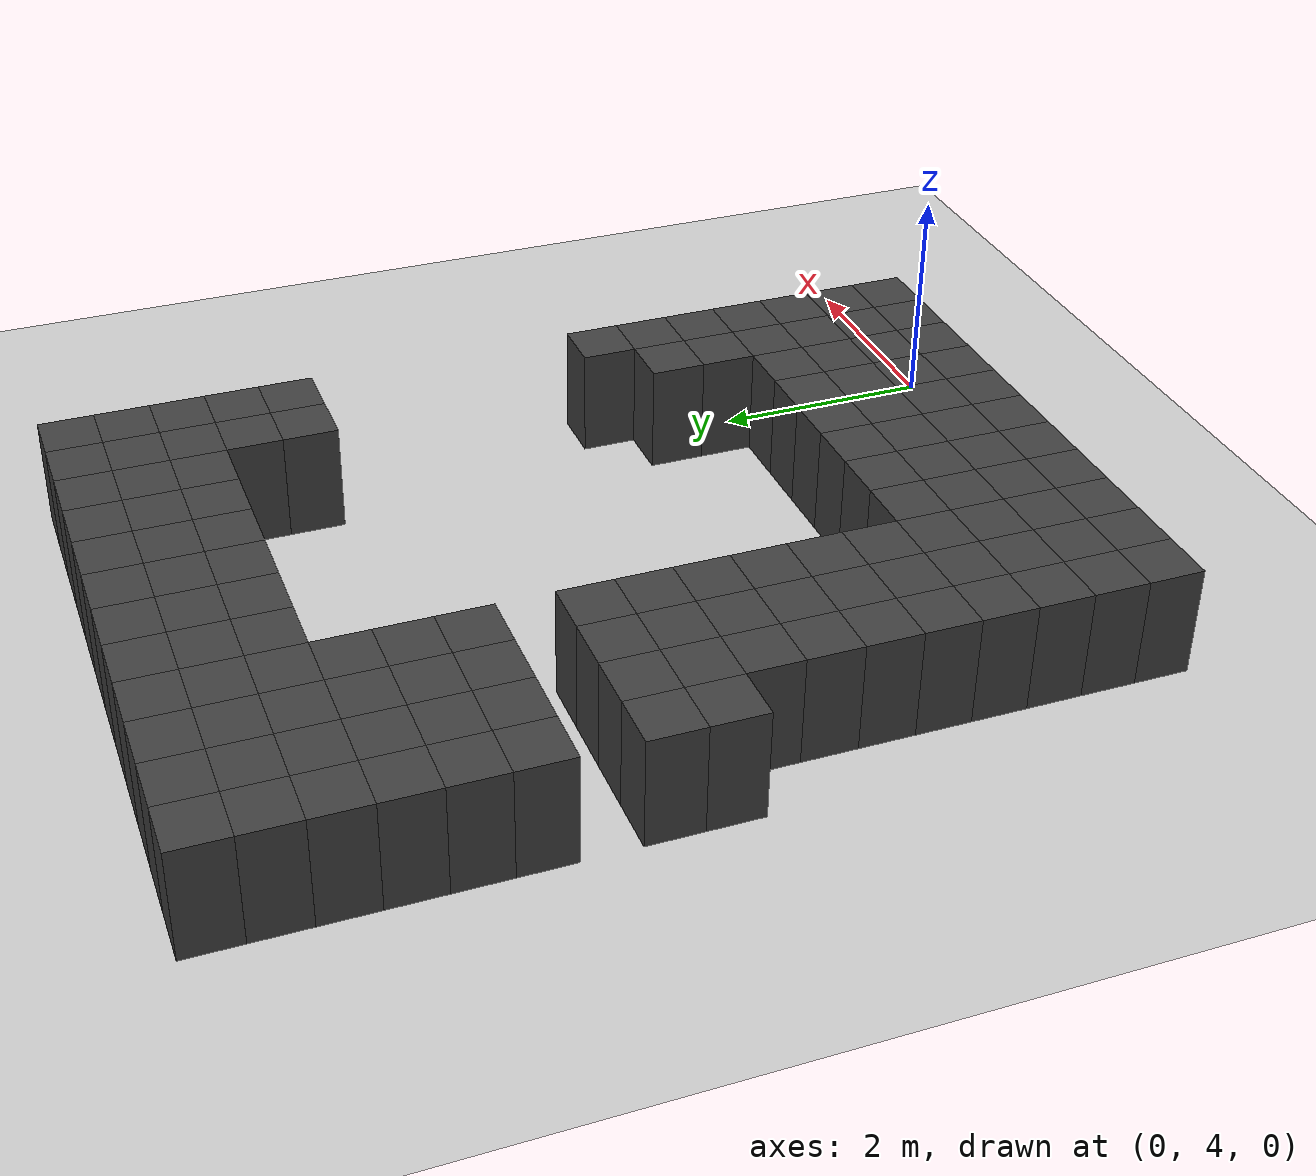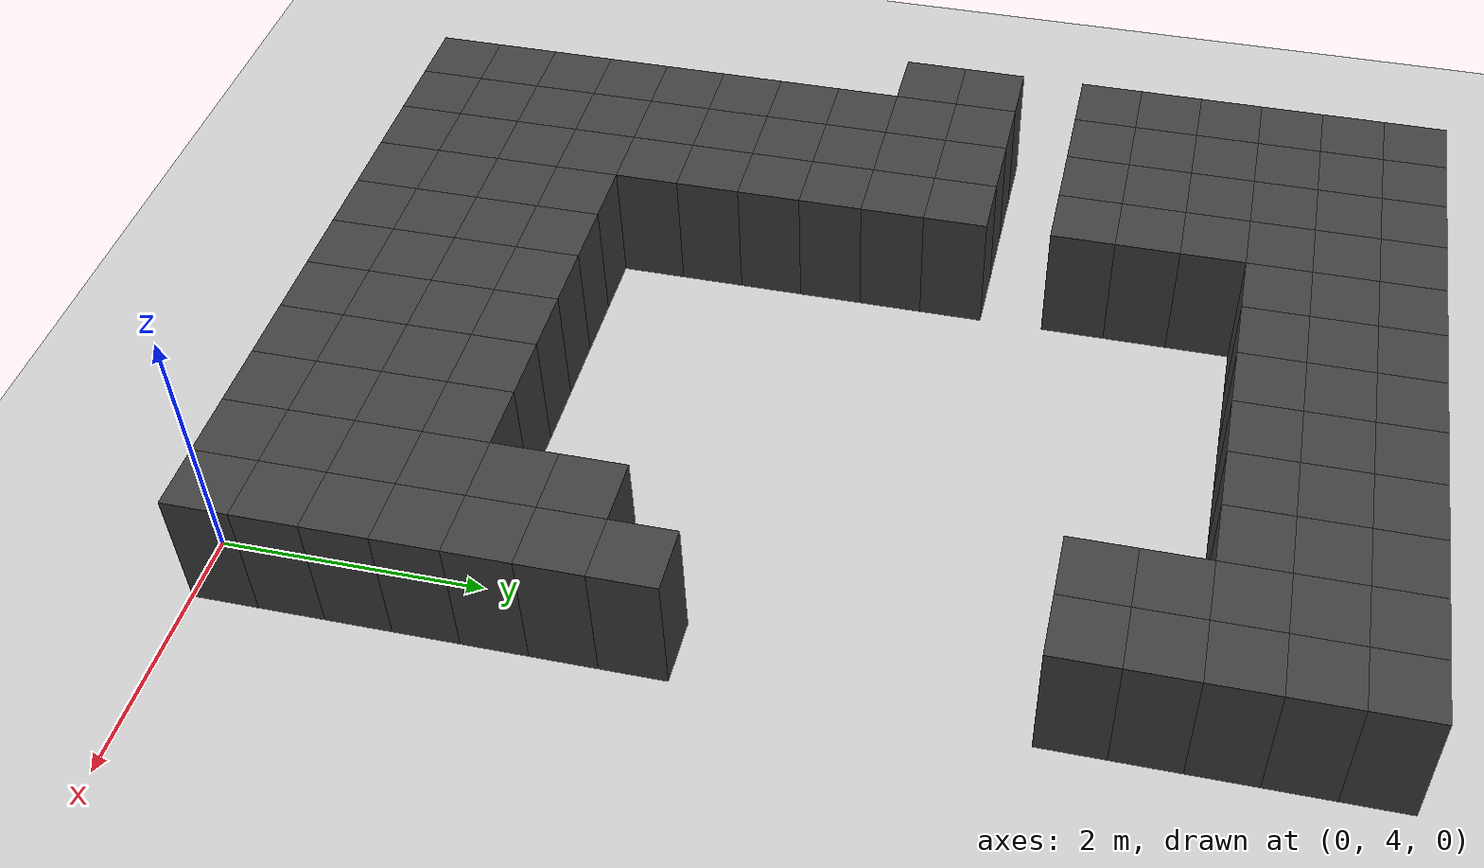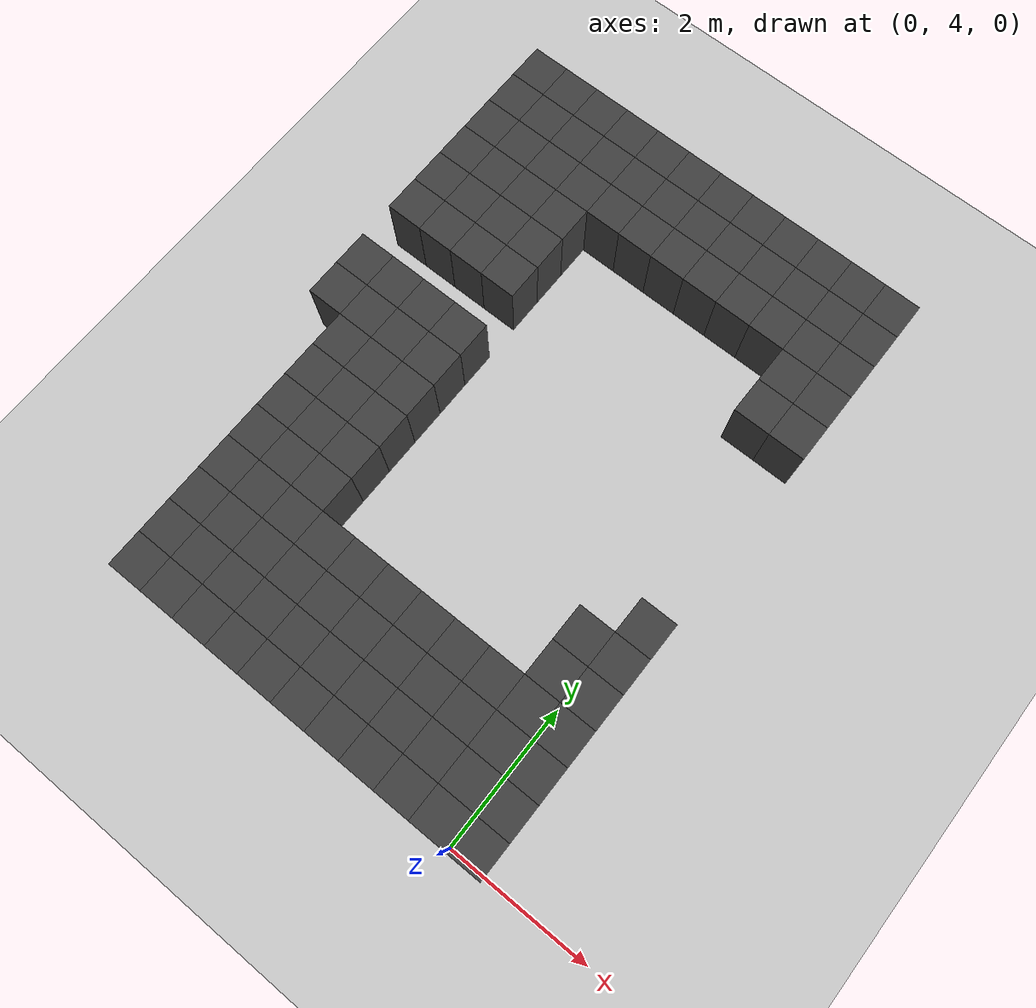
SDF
<sdf version="1.7">
 <world name="map_14510">
  <model name="ground_plane">
   <static>true</static>
   <link name="link">
    <collision name="collision">
     <geometry><plane><normal>0 0 1</normal><size>200 200</size></plane></geometry>
    </collision>
    <visual name="visual">
     <geometry><plane><normal>0 0 1</normal><size>200 200</size></plane></geometry>
     <material><ambient>0.8 0.8 0.8 1</ambient><diffuse>0.8 0.8 0.8 1</diffuse></material>
    </visual>
   </link>
  </model>
  <model name="maze_environment">
   <static>true</static>
   <link name="wall_14">
    <pose>-5.250 12.250 0.500 0 0 0</pose>
    <collision name="col"><geometry><box><size>0.5 0.5 1.0</size></box></geometry></collision>
    <visual name="vis">
     <geometry><box><size>0.5 0.5 1.0</size></box></geometry>
     <material><ambient>0.15 0.15 0.15 1</ambient><diffuse>0.25 0.25 0.25 1</diffuse></material>
    </visual>
   </link>
   <link name="wall_15">
    <pose>-4.750 12.250 0.500 0 0 0</pose>
    <collision name="col"><geometry><box><size>0.5 0.5 1.0</size></box></geometry></collision>
    <visual name="vis">
     <geometry><box><size>0.5 0.5 1.0</size></box></geometry>
     <material><ambient>0.15 0.15 0.15 1</ambient><diffuse>0.25 0.25 0.25 1</diffuse></material>
    </visual>
   </link>
   <link name="wall_16">
    <pose>-4.250 12.250 0.500 0 0 0</pose>
    <collision name="col"><geometry><box><size>0.5 0.5 1.0</size></box></geometry></collision>
    <visual name="vis">
     <geometry><box><size>0.5 0.5 1.0</size></box></geometry>
     <material><ambient>0.15 0.15 0.15 1</ambient><diffuse>0.25 0.25 0.25 1</diffuse></material>
    </visual>
   </link>
   <link name="wall_17">
    <pose>-3.750 12.250 0.500 0 0 0</pose>
    <collision name="col"><geometry><box><size>0.5 0.5 1.0</size></box></geometry></collision>
    <visual name="vis">
     <geometry><box><size>0.5 0.5 1.0</size></box></geometry>
     <material><ambient>0.15 0.15 0.15 1</ambient><diffuse>0.25 0.25 0.25 1</diffuse></material>
    </visual>
   </link>
   <link name="wall_18">
    <pose>-3.250 12.250 0.500 0 0 0</pose>
    <collision name="col"><geometry><box><size>0.5 0.5 1.0</size></box></geometry></collision>
    <visual name="vis">
     <geometry><box><size>0.5 0.5 1.0</size></box></geometry>
     <material><ambient>0.15 0.15 0.15 1</ambient><diffuse>0.25 0.25 0.25 1</diffuse></material>
    </visual>
   </link>
   <link name="wall_19">
    <pose>-2.750 12.250 0.500 0 0 0</pose>
    <collision name="col"><geometry><box><size>0.5 0.5 1.0</size></box></geometry></collision>
    <visual name="vis">
     <geometry><box><size>0.5 0.5 1.0</size></box></geometry>
     <material><ambient>0.15 0.15 0.15 1</ambient><diffuse>0.25 0.25 0.25 1</diffuse></material>
    </visual>
   </link>
   <link name="wall_20">
    <pose>-2.250 12.250 0.500 0 0 0</pose>
    <collision name="col"><geometry><box><size>0.5 0.5 1.0</size></box></geometry></collision>
    <visual name="vis">
     <geometry><box><size>0.5 0.5 1.0</size></box></geometry>
     <material><ambient>0.15 0.15 0.15 1</ambient><diffuse>0.25 0.25 0.25 1</diffuse></material>
    </visual>
   </link>
   <link name="wall_21">
    <pose>-1.750 12.250 0.500 0 0 0</pose>
    <collision name="col"><geometry><box><size>0.5 0.5 1.0</size></box></geometry></collision>
    <visual name="vis">
     <geometry><box><size>0.5 0.5 1.0</size></box></geometry>
     <material><ambient>0.15 0.15 0.15 1</ambient><diffuse>0.25 0.25 0.25 1</diffuse></material>
    </visual>
   </link>
   <link name="wall_22">
    <pose>-1.250 12.250 0.500 0 0 0</pose>
    <collision name="col"><geometry><box><size>0.5 0.5 1.0</size></box></geometry></collision>
    <visual name="vis">
     <geometry><box><size>0.5 0.5 1.0</size></box></geometry>
     <material><ambient>0.15 0.15 0.15 1</ambient><diffuse>0.25 0.25 0.25 1</diffuse></material>
    </visual>
   </link>
   <link name="wall_23">
    <pose>-0.750 12.250 0.500 0 0 0</pose>
    <collision name="col"><geometry><box><size>0.5 0.5 1.0</size></box></geometry></collision>
    <visual name="vis">
     <geometry><box><size>0.5 0.5 1.0</size></box></geometry>
     <material><ambient>0.15 0.15 0.15 1</ambient><diffuse>0.25 0.25 0.25 1</diffuse></material>
    </visual>
   </link>
   <link name="wall_24">
    <pose>-0.250 12.250 0.500 0 0 0</pose>
    <collision name="col"><geometry><box><size>0.5 0.5 1.0</size></box></geometry></collision>
    <visual name="vis">
     <geometry><box><size>0.5 0.5 1.0</size></box></geometry>
     <material><ambient>0.15 0.15 0.15 1</ambient><diffuse>0.25 0.25 0.25 1</diffuse></material>
    </visual>
   </link>
   <link name="wall_25">
    <pose>0.250 12.250 0.500 0 0 0</pose>
    <collision name="col"><geometry><box><size>0.5 0.5 1.0</size></box></geometry></collision>
    <visual name="vis">
     <geometry><box><size>0.5 0.5 1.0</size></box></geometry>
     <material><ambient>0.15 0.15 0.15 1</ambient><diffuse>0.25 0.25 0.25 1</diffuse></material>
    </visual>
   </link>
   <link name="wall_61">
    <pose>-5.250 11.750 0.500 0 0 0</pose>
    <collision name="col"><geometry><box><size>0.5 0.5 1.0</size></box></geometry></collision>
    <visual name="vis">
     <geometry><box><size>0.5 0.5 1.0</size></box></geometry>
     <material><ambient>0.15 0.15 0.15 1</ambient><diffuse>0.25 0.25 0.25 1</diffuse></material>
    </visual>
   </link>
   <link name="wall_62">
    <pose>-4.750 11.750 0.500 0 0 0</pose>
    <collision name="col"><geometry><box><size>0.5 0.5 1.0</size></box></geometry></collision>
    <visual name="vis">
     <geometry><box><size>0.5 0.5 1.0</size></box></geometry>
     <material><ambient>0.15 0.15 0.15 1</ambient><diffuse>0.25 0.25 0.25 1</diffuse></material>
    </visual>
   </link>
   <link name="wall_63">
    <pose>-4.250 11.750 0.500 0 0 0</pose>
    <collision name="col"><geometry><box><size>0.5 0.5 1.0</size></box></geometry></collision>
    <visual name="vis">
     <geometry><box><size>0.5 0.5 1.0</size></box></geometry>
     <material><ambient>0.15 0.15 0.15 1</ambient><diffuse>0.25 0.25 0.25 1</diffuse></material>
    </visual>
   </link>
   <link name="wall_64">
    <pose>-3.750 11.750 0.500 0 0 0</pose>
    <collision name="col"><geometry><box><size>0.5 0.5 1.0</size></box></geometry></collision>
    <visual name="vis">
     <geometry><box><size>0.5 0.5 1.0</size></box></geometry>
     <material><ambient>0.15 0.15 0.15 1</ambient><diffuse>0.25 0.25 0.25 1</diffuse></material>
    </visual>
   </link>
   <link name="wall_65">
    <pose>-3.250 11.750 0.500 0 0 0</pose>
    <collision name="col"><geometry><box><size>0.5 0.5 1.0</size></box></geometry></collision>
    <visual name="vis">
     <geometry><box><size>0.5 0.5 1.0</size></box></geometry>
     <material><ambient>0.15 0.15 0.15 1</ambient><diffuse>0.25 0.25 0.25 1</diffuse></material>
    </visual>
   </link>
   <link name="wall_66">
    <pose>-2.750 11.750 0.500 0 0 0</pose>
    <collision name="col"><geometry><box><size>0.5 0.5 1.0</size></box></geometry></collision>
    <visual name="vis">
     <geometry><box><size>0.5 0.5 1.0</size></box></geometry>
     <material><ambient>0.15 0.15 0.15 1</ambient><diffuse>0.25 0.25 0.25 1</diffuse></material>
    </visual>
   </link>
   <link name="wall_67">
    <pose>-2.250 11.750 0.500 0 0 0</pose>
    <collision name="col"><geometry><box><size>0.5 0.5 1.0</size></box></geometry></collision>
    <visual name="vis">
     <geometry><box><size>0.5 0.5 1.0</size></box></geometry>
     <material><ambient>0.15 0.15 0.15 1</ambient><diffuse>0.25 0.25 0.25 1</diffuse></material>
    </visual>
   </link>
   <link name="wall_68">
    <pose>-1.750 11.750 0.500 0 0 0</pose>
    <collision name="col"><geometry><box><size>0.5 0.5 1.0</size></box></geometry></collision>
    <visual name="vis">
     <geometry><box><size>0.5 0.5 1.0</size></box></geometry>
     <material><ambient>0.15 0.15 0.15 1</ambient><diffuse>0.25 0.25 0.25 1</diffuse></material>
    </visual>
   </link>
   <link name="wall_69">
    <pose>-1.250 11.750 0.500 0 0 0</pose>
    <collision name="col"><geometry><box><size>0.5 0.5 1.0</size></box></geometry></collision>
    <visual name="vis">
     <geometry><box><size>0.5 0.5 1.0</size></box></geometry>
     <material><ambient>0.15 0.15 0.15 1</ambient><diffuse>0.25 0.25 0.25 1</diffuse></material>
    </visual>
   </link>
   <link name="wall_70">
    <pose>-0.750 11.750 0.500 0 0 0</pose>
    <collision name="col"><geometry><box><size>0.5 0.5 1.0</size></box></geometry></collision>
    <visual name="vis">
     <geometry><box><size>0.5 0.5 1.0</size></box></geometry>
     <material><ambient>0.15 0.15 0.15 1</ambient><diffuse>0.25 0.25 0.25 1</diffuse></material>
    </visual>
   </link>
   <link name="wall_71">
    <pose>-0.250 11.750 0.500 0 0 0</pose>
    <collision name="col"><geometry><box><size>0.5 0.5 1.0</size></box></geometry></collision>
    <visual name="vis">
     <geometry><box><size>0.5 0.5 1.0</size></box></geometry>
     <material><ambient>0.15 0.15 0.15 1</ambient><diffuse>0.25 0.25 0.25 1</diffuse></material>
    </visual>
   </link>
   <link name="wall_72">
    <pose>0.250 11.750 0.500 0 0 0</pose>
    <collision name="col"><geometry><box><size>0.5 0.5 1.0</size></box></geometry></collision>
    <visual name="vis">
     <geometry><box><size>0.5 0.5 1.0</size></box></geometry>
     <material><ambient>0.15 0.15 0.15 1</ambient><diffuse>0.25 0.25 0.25 1</diffuse></material>
    </visual>
   </link>
   <link name="wall_108">
    <pose>-5.250 11.250 0.500 0 0 0</pose>
    <collision name="col"><geometry><box><size>0.5 0.5 1.0</size></box></geometry></collision>
    <visual name="vis">
     <geometry><box><size>0.5 0.5 1.0</size></box></geometry>
     <material><ambient>0.15 0.15 0.15 1</ambient><diffuse>0.25 0.25 0.25 1</diffuse></material>
    </visual>
   </link>
   <link name="wall_109">
    <pose>-4.750 11.250 0.500 0 0 0</pose>
    <collision name="col"><geometry><box><size>0.5 0.5 1.0</size></box></geometry></collision>
    <visual name="vis">
     <geometry><box><size>0.5 0.5 1.0</size></box></geometry>
     <material><ambient>0.15 0.15 0.15 1</ambient><diffuse>0.25 0.25 0.25 1</diffuse></material>
    </visual>
   </link>
   <link name="wall_110">
    <pose>-4.250 11.250 0.500 0 0 0</pose>
    <collision name="col"><geometry><box><size>0.5 0.5 1.0</size></box></geometry></collision>
    <visual name="vis">
     <geometry><box><size>0.5 0.5 1.0</size></box></geometry>
     <material><ambient>0.15 0.15 0.15 1</ambient><diffuse>0.25 0.25 0.25 1</diffuse></material>
    </visual>
   </link>
   <link name="wall_111">
    <pose>-3.750 11.250 0.500 0 0 0</pose>
    <collision name="col"><geometry><box><size>0.5 0.5 1.0</size></box></geometry></collision>
    <visual name="vis">
     <geometry><box><size>0.5 0.5 1.0</size></box></geometry>
     <material><ambient>0.15 0.15 0.15 1</ambient><diffuse>0.25 0.25 0.25 1</diffuse></material>
    </visual>
   </link>
   <link name="wall_112">
    <pose>-3.250 11.250 0.500 0 0 0</pose>
    <collision name="col"><geometry><box><size>0.5 0.5 1.0</size></box></geometry></collision>
    <visual name="vis">
     <geometry><box><size>0.5 0.5 1.0</size></box></geometry>
     <material><ambient>0.15 0.15 0.15 1</ambient><diffuse>0.25 0.25 0.25 1</diffuse></material>
    </visual>
   </link>
   <link name="wall_113">
    <pose>-2.750 11.250 0.500 0 0 0</pose>
    <collision name="col"><geometry><box><size>0.5 0.5 1.0</size></box></geometry></collision>
    <visual name="vis">
     <geometry><box><size>0.5 0.5 1.0</size></box></geometry>
     <material><ambient>0.15 0.15 0.15 1</ambient><diffuse>0.25 0.25 0.25 1</diffuse></material>
    </visual>
   </link>
   <link name="wall_114">
    <pose>-2.250 11.250 0.500 0 0 0</pose>
    <collision name="col"><geometry><box><size>0.5 0.5 1.0</size></box></geometry></collision>
    <visual name="vis">
     <geometry><box><size>0.5 0.5 1.0</size></box></geometry>
     <material><ambient>0.15 0.15 0.15 1</ambient><diffuse>0.25 0.25 0.25 1</diffuse></material>
    </visual>
   </link>
   <link name="wall_115">
    <pose>-1.750 11.250 0.500 0 0 0</pose>
    <collision name="col"><geometry><box><size>0.5 0.5 1.0</size></box></geometry></collision>
    <visual name="vis">
     <geometry><box><size>0.5 0.5 1.0</size></box></geometry>
     <material><ambient>0.15 0.15 0.15 1</ambient><diffuse>0.25 0.25 0.25 1</diffuse></material>
    </visual>
   </link>
   <link name="wall_116">
    <pose>-1.250 11.250 0.500 0 0 0</pose>
    <collision name="col"><geometry><box><size>0.5 0.5 1.0</size></box></geometry></collision>
    <visual name="vis">
     <geometry><box><size>0.5 0.5 1.0</size></box></geometry>
     <material><ambient>0.15 0.15 0.15 1</ambient><diffuse>0.25 0.25 0.25 1</diffuse></material>
    </visual>
   </link>
   <link name="wall_117">
    <pose>-0.750 11.250 0.500 0 0 0</pose>
    <collision name="col"><geometry><box><size>0.5 0.5 1.0</size></box></geometry></collision>
    <visual name="vis">
     <geometry><box><size>0.5 0.5 1.0</size></box></geometry>
     <material><ambient>0.15 0.15 0.15 1</ambient><diffuse>0.25 0.25 0.25 1</diffuse></material>
    </visual>
   </link>
   <link name="wall_118">
    <pose>-0.250 11.250 0.500 0 0 0</pose>
    <collision name="col"><geometry><box><size>0.5 0.5 1.0</size></box></geometry></collision>
    <visual name="vis">
     <geometry><box><size>0.5 0.5 1.0</size></box></geometry>
     <material><ambient>0.15 0.15 0.15 1</ambient><diffuse>0.25 0.25 0.25 1</diffuse></material>
    </visual>
   </link>
   <link name="wall_119">
    <pose>0.250 11.250 0.500 0 0 0</pose>
    <collision name="col"><geometry><box><size>0.5 0.5 1.0</size></box></geometry></collision>
    <visual name="vis">
     <geometry><box><size>0.5 0.5 1.0</size></box></geometry>
     <material><ambient>0.15 0.15 0.15 1</ambient><diffuse>0.25 0.25 0.25 1</diffuse></material>
    </visual>
   </link>
   <link name="wall_151">
    <pose>-5.250 10.750 0.500 0 0 0</pose>
    <collision name="col"><geometry><box><size>0.5 0.5 1.0</size></box></geometry></collision>
    <visual name="vis">
     <geometry><box><size>0.5 0.5 1.0</size></box></geometry>
     <material><ambient>0.15 0.15 0.15 1</ambient><diffuse>0.25 0.25 0.25 1</diffuse></material>
    </visual>
   </link>
   <link name="wall_152">
    <pose>-4.750 10.750 0.500 0 0 0</pose>
    <collision name="col"><geometry><box><size>0.5 0.5 1.0</size></box></geometry></collision>
    <visual name="vis">
     <geometry><box><size>0.5 0.5 1.0</size></box></geometry>
     <material><ambient>0.15 0.15 0.15 1</ambient><diffuse>0.25 0.25 0.25 1</diffuse></material>
    </visual>
   </link>
   <link name="wall_153">
    <pose>-4.250 10.750 0.500 0 0 0</pose>
    <collision name="col"><geometry><box><size>0.5 0.5 1.0</size></box></geometry></collision>
    <visual name="vis">
     <geometry><box><size>0.5 0.5 1.0</size></box></geometry>
     <material><ambient>0.15 0.15 0.15 1</ambient><diffuse>0.25 0.25 0.25 1</diffuse></material>
    </visual>
   </link>
   <link name="wall_154">
    <pose>-3.750 10.750 0.500 0 0 0</pose>
    <collision name="col"><geometry><box><size>0.5 0.5 1.0</size></box></geometry></collision>
    <visual name="vis">
     <geometry><box><size>0.5 0.5 1.0</size></box></geometry>
     <material><ambient>0.15 0.15 0.15 1</ambient><diffuse>0.25 0.25 0.25 1</diffuse></material>
    </visual>
   </link>
   <link name="wall_155">
    <pose>-0.250 10.750 0.500 0 0 0</pose>
    <collision name="col"><geometry><box><size>0.5 0.5 1.0</size></box></geometry></collision>
    <visual name="vis">
     <geometry><box><size>0.5 0.5 1.0</size></box></geometry>
     <material><ambient>0.15 0.15 0.15 1</ambient><diffuse>0.25 0.25 0.25 1</diffuse></material>
    </visual>
   </link>
   <link name="wall_156">
    <pose>0.250 10.750 0.500 0 0 0</pose>
    <collision name="col"><geometry><box><size>0.5 0.5 1.0</size></box></geometry></collision>
    <visual name="vis">
     <geometry><box><size>0.5 0.5 1.0</size></box></geometry>
     <material><ambient>0.15 0.15 0.15 1</ambient><diffuse>0.25 0.25 0.25 1</diffuse></material>
    </visual>
   </link>
   <link name="wall_190">
    <pose>-5.250 10.250 0.500 0 0 0</pose>
    <collision name="col"><geometry><box><size>0.5 0.5 1.0</size></box></geometry></collision>
    <visual name="vis">
     <geometry><box><size>0.5 0.5 1.0</size></box></geometry>
     <material><ambient>0.15 0.15 0.15 1</ambient><diffuse>0.25 0.25 0.25 1</diffuse></material>
    </visual>
   </link>
   <link name="wall_191">
    <pose>-4.750 10.250 0.500 0 0 0</pose>
    <collision name="col"><geometry><box><size>0.5 0.5 1.0</size></box></geometry></collision>
    <visual name="vis">
     <geometry><box><size>0.5 0.5 1.0</size></box></geometry>
     <material><ambient>0.15 0.15 0.15 1</ambient><diffuse>0.25 0.25 0.25 1</diffuse></material>
    </visual>
   </link>
   <link name="wall_192">
    <pose>-4.250 10.250 0.500 0 0 0</pose>
    <collision name="col"><geometry><box><size>0.5 0.5 1.0</size></box></geometry></collision>
    <visual name="vis">
     <geometry><box><size>0.5 0.5 1.0</size></box></geometry>
     <material><ambient>0.15 0.15 0.15 1</ambient><diffuse>0.25 0.25 0.25 1</diffuse></material>
    </visual>
   </link>
   <link name="wall_193">
    <pose>-3.750 10.250 0.500 0 0 0</pose>
    <collision name="col"><geometry><box><size>0.5 0.5 1.0</size></box></geometry></collision>
    <visual name="vis">
     <geometry><box><size>0.5 0.5 1.0</size></box></geometry>
     <material><ambient>0.15 0.15 0.15 1</ambient><diffuse>0.25 0.25 0.25 1</diffuse></material>
    </visual>
   </link>
   <link name="wall_194">
    <pose>-0.250 10.250 0.500 0 0 0</pose>
    <collision name="col"><geometry><box><size>0.5 0.5 1.0</size></box></geometry></collision>
    <visual name="vis">
     <geometry><box><size>0.5 0.5 1.0</size></box></geometry>
     <material><ambient>0.15 0.15 0.15 1</ambient><diffuse>0.25 0.25 0.25 1</diffuse></material>
    </visual>
   </link>
   <link name="wall_195">
    <pose>0.250 10.250 0.500 0 0 0</pose>
    <collision name="col"><geometry><box><size>0.5 0.5 1.0</size></box></geometry></collision>
    <visual name="vis">
     <geometry><box><size>0.5 0.5 1.0</size></box></geometry>
     <material><ambient>0.15 0.15 0.15 1</ambient><diffuse>0.25 0.25 0.25 1</diffuse></material>
    </visual>
   </link>
   <link name="wall_229">
    <pose>-5.250 9.750 0.500 0 0 0</pose>
    <collision name="col"><geometry><box><size>0.5 0.5 1.0</size></box></geometry></collision>
    <visual name="vis">
     <geometry><box><size>0.5 0.5 1.0</size></box></geometry>
     <material><ambient>0.15 0.15 0.15 1</ambient><diffuse>0.25 0.25 0.25 1</diffuse></material>
    </visual>
   </link>
   <link name="wall_230">
    <pose>-4.750 9.750 0.500 0 0 0</pose>
    <collision name="col"><geometry><box><size>0.5 0.5 1.0</size></box></geometry></collision>
    <visual name="vis">
     <geometry><box><size>0.5 0.5 1.0</size></box></geometry>
     <material><ambient>0.15 0.15 0.15 1</ambient><diffuse>0.25 0.25 0.25 1</diffuse></material>
    </visual>
   </link>
   <link name="wall_231">
    <pose>-4.250 9.750 0.500 0 0 0</pose>
    <collision name="col"><geometry><box><size>0.5 0.5 1.0</size></box></geometry></collision>
    <visual name="vis">
     <geometry><box><size>0.5 0.5 1.0</size></box></geometry>
     <material><ambient>0.15 0.15 0.15 1</ambient><diffuse>0.25 0.25 0.25 1</diffuse></material>
    </visual>
   </link>
   <link name="wall_232">
    <pose>-3.750 9.750 0.500 0 0 0</pose>
    <collision name="col"><geometry><box><size>0.5 0.5 1.0</size></box></geometry></collision>
    <visual name="vis">
     <geometry><box><size>0.5 0.5 1.0</size></box></geometry>
     <material><ambient>0.15 0.15 0.15 1</ambient><diffuse>0.25 0.25 0.25 1</diffuse></material>
    </visual>
   </link>
   <link name="wall_283">
    <pose>-5.250 8.750 0.500 0 0 0</pose>
    <collision name="col"><geometry><box><size>0.5 0.5 1.0</size></box></geometry></collision>
    <visual name="vis">
     <geometry><box><size>0.5 0.5 1.0</size></box></geometry>
     <material><ambient>0.15 0.15 0.15 1</ambient><diffuse>0.25 0.25 0.25 1</diffuse></material>
    </visual>
   </link>
   <link name="wall_284">
    <pose>-4.750 8.750 0.500 0 0 0</pose>
    <collision name="col"><geometry><box><size>0.5 0.5 1.0</size></box></geometry></collision>
    <visual name="vis">
     <geometry><box><size>0.5 0.5 1.0</size></box></geometry>
     <material><ambient>0.15 0.15 0.15 1</ambient><diffuse>0.25 0.25 0.25 1</diffuse></material>
    </visual>
   </link>
   <link name="wall_285">
    <pose>-4.250 8.750 0.500 0 0 0</pose>
    <collision name="col"><geometry><box><size>0.5 0.5 1.0</size></box></geometry></collision>
    <visual name="vis">
     <geometry><box><size>0.5 0.5 1.0</size></box></geometry>
     <material><ambient>0.15 0.15 0.15 1</ambient><diffuse>0.25 0.25 0.25 1</diffuse></material>
    </visual>
   </link>
   <link name="wall_286">
    <pose>-3.750 8.750 0.500 0 0 0</pose>
    <collision name="col"><geometry><box><size>0.5 0.5 1.0</size></box></geometry></collision>
    <visual name="vis">
     <geometry><box><size>0.5 0.5 1.0</size></box></geometry>
     <material><ambient>0.15 0.15 0.15 1</ambient><diffuse>0.25 0.25 0.25 1</diffuse></material>
    </visual>
   </link>
   <link name="wall_316">
    <pose>-5.250 8.250 0.500 0 0 0</pose>
    <collision name="col"><geometry><box><size>0.5 0.5 1.0</size></box></geometry></collision>
    <visual name="vis">
     <geometry><box><size>0.5 0.5 1.0</size></box></geometry>
     <material><ambient>0.15 0.15 0.15 1</ambient><diffuse>0.25 0.25 0.25 1</diffuse></material>
    </visual>
   </link>
   <link name="wall_317">
    <pose>-4.750 8.250 0.500 0 0 0</pose>
    <collision name="col"><geometry><box><size>0.5 0.5 1.0</size></box></geometry></collision>
    <visual name="vis">
     <geometry><box><size>0.5 0.5 1.0</size></box></geometry>
     <material><ambient>0.15 0.15 0.15 1</ambient><diffuse>0.25 0.25 0.25 1</diffuse></material>
    </visual>
   </link>
   <link name="wall_318">
    <pose>-4.250 8.250 0.500 0 0 0</pose>
    <collision name="col"><geometry><box><size>0.5 0.5 1.0</size></box></geometry></collision>
    <visual name="vis">
     <geometry><box><size>0.5 0.5 1.0</size></box></geometry>
     <material><ambient>0.15 0.15 0.15 1</ambient><diffuse>0.25 0.25 0.25 1</diffuse></material>
    </visual>
   </link>
   <link name="wall_319">
    <pose>-3.750 8.250 0.500 0 0 0</pose>
    <collision name="col"><geometry><box><size>0.5 0.5 1.0</size></box></geometry></collision>
    <visual name="vis">
     <geometry><box><size>0.5 0.5 1.0</size></box></geometry>
     <material><ambient>0.15 0.15 0.15 1</ambient><diffuse>0.25 0.25 0.25 1</diffuse></material>
    </visual>
   </link>
   <link name="wall_348">
    <pose>-4.750 7.750 0.500 0 0 0</pose>
    <collision name="col"><geometry><box><size>0.5 0.5 1.0</size></box></geometry></collision>
    <visual name="vis">
     <geometry><box><size>0.5 0.5 1.0</size></box></geometry>
     <material><ambient>0.15 0.15 0.15 1</ambient><diffuse>0.25 0.25 0.25 1</diffuse></material>
    </visual>
   </link>
   <link name="wall_349">
    <pose>-4.250 7.750 0.500 0 0 0</pose>
    <collision name="col"><geometry><box><size>0.5 0.5 1.0</size></box></geometry></collision>
    <visual name="vis">
     <geometry><box><size>0.5 0.5 1.0</size></box></geometry>
     <material><ambient>0.15 0.15 0.15 1</ambient><diffuse>0.25 0.25 0.25 1</diffuse></material>
    </visual>
   </link>
   <link name="wall_350">
    <pose>-3.750 7.750 0.500 0 0 0</pose>
    <collision name="col"><geometry><box><size>0.5 0.5 1.0</size></box></geometry></collision>
    <visual name="vis">
     <geometry><box><size>0.5 0.5 1.0</size></box></geometry>
     <material><ambient>0.15 0.15 0.15 1</ambient><diffuse>0.25 0.25 0.25 1</diffuse></material>
    </visual>
   </link>
   <link name="wall_368">
    <pose>-4.750 7.250 0.500 0 0 0</pose>
    <collision name="col"><geometry><box><size>0.5 0.5 1.0</size></box></geometry></collision>
    <visual name="vis">
     <geometry><box><size>0.5 0.5 1.0</size></box></geometry>
     <material><ambient>0.15 0.15 0.15 1</ambient><diffuse>0.25 0.25 0.25 1</diffuse></material>
    </visual>
   </link>
   <link name="wall_369">
    <pose>-4.250 7.250 0.500 0 0 0</pose>
    <collision name="col"><geometry><box><size>0.5 0.5 1.0</size></box></geometry></collision>
    <visual name="vis">
     <geometry><box><size>0.5 0.5 1.0</size></box></geometry>
     <material><ambient>0.15 0.15 0.15 1</ambient><diffuse>0.25 0.25 0.25 1</diffuse></material>
    </visual>
   </link>
   <link name="wall_370">
    <pose>-3.750 7.250 0.500 0 0 0</pose>
    <collision name="col"><geometry><box><size>0.5 0.5 1.0</size></box></geometry></collision>
    <visual name="vis">
     <geometry><box><size>0.5 0.5 1.0</size></box></geometry>
     <material><ambient>0.15 0.15 0.15 1</ambient><diffuse>0.25 0.25 0.25 1</diffuse></material>
    </visual>
   </link>
   <link name="wall_371">
    <pose>0.250 7.250 0.500 0 0 0</pose>
    <collision name="col"><geometry><box><size>0.5 0.5 1.0</size></box></geometry></collision>
    <visual name="vis">
     <geometry><box><size>0.5 0.5 1.0</size></box></geometry>
     <material><ambient>0.15 0.15 0.15 1</ambient><diffuse>0.25 0.25 0.25 1</diffuse></material>
    </visual>
   </link>
   <link name="wall_393">
    <pose>-4.750 6.750 0.500 0 0 0</pose>
    <collision name="col"><geometry><box><size>0.5 0.5 1.0</size></box></geometry></collision>
    <visual name="vis">
     <geometry><box><size>0.5 0.5 1.0</size></box></geometry>
     <material><ambient>0.15 0.15 0.15 1</ambient><diffuse>0.25 0.25 0.25 1</diffuse></material>
    </visual>
   </link>
   <link name="wall_394">
    <pose>-4.250 6.750 0.500 0 0 0</pose>
    <collision name="col"><geometry><box><size>0.5 0.5 1.0</size></box></geometry></collision>
    <visual name="vis">
     <geometry><box><size>0.5 0.5 1.0</size></box></geometry>
     <material><ambient>0.15 0.15 0.15 1</ambient><diffuse>0.25 0.25 0.25 1</diffuse></material>
    </visual>
   </link>
   <link name="wall_395">
    <pose>-3.750 6.750 0.500 0 0 0</pose>
    <collision name="col"><geometry><box><size>0.5 0.5 1.0</size></box></geometry></collision>
    <visual name="vis">
     <geometry><box><size>0.5 0.5 1.0</size></box></geometry>
     <material><ambient>0.15 0.15 0.15 1</ambient><diffuse>0.25 0.25 0.25 1</diffuse></material>
    </visual>
   </link>
   <link name="wall_396">
    <pose>-0.250 6.750 0.500 0 0 0</pose>
    <collision name="col"><geometry><box><size>0.5 0.5 1.0</size></box></geometry></collision>
    <visual name="vis">
     <geometry><box><size>0.5 0.5 1.0</size></box></geometry>
     <material><ambient>0.15 0.15 0.15 1</ambient><diffuse>0.25 0.25 0.25 1</diffuse></material>
    </visual>
   </link>
   <link name="wall_397">
    <pose>0.250 6.750 0.500 0 0 0</pose>
    <collision name="col"><geometry><box><size>0.5 0.5 1.0</size></box></geometry></collision>
    <visual name="vis">
     <geometry><box><size>0.5 0.5 1.0</size></box></geometry>
     <material><ambient>0.15 0.15 0.15 1</ambient><diffuse>0.25 0.25 0.25 1</diffuse></material>
    </visual>
   </link>
   <link name="wall_406">
    <pose>-4.750 6.250 0.500 0 0 0</pose>
    <collision name="col"><geometry><box><size>0.5 0.5 1.0</size></box></geometry></collision>
    <visual name="vis">
     <geometry><box><size>0.5 0.5 1.0</size></box></geometry>
     <material><ambient>0.15 0.15 0.15 1</ambient><diffuse>0.25 0.25 0.25 1</diffuse></material>
    </visual>
   </link>
   <link name="wall_407">
    <pose>-4.250 6.250 0.500 0 0 0</pose>
    <collision name="col"><geometry><box><size>0.5 0.5 1.0</size></box></geometry></collision>
    <visual name="vis">
     <geometry><box><size>0.5 0.5 1.0</size></box></geometry>
     <material><ambient>0.15 0.15 0.15 1</ambient><diffuse>0.25 0.25 0.25 1</diffuse></material>
    </visual>
   </link>
   <link name="wall_408">
    <pose>-3.750 6.250 0.500 0 0 0</pose>
    <collision name="col"><geometry><box><size>0.5 0.5 1.0</size></box></geometry></collision>
    <visual name="vis">
     <geometry><box><size>0.5 0.5 1.0</size></box></geometry>
     <material><ambient>0.15 0.15 0.15 1</ambient><diffuse>0.25 0.25 0.25 1</diffuse></material>
    </visual>
   </link>
   <link name="wall_409">
    <pose>-0.250 6.250 0.500 0 0 0</pose>
    <collision name="col"><geometry><box><size>0.5 0.5 1.0</size></box></geometry></collision>
    <visual name="vis">
     <geometry><box><size>0.5 0.5 1.0</size></box></geometry>
     <material><ambient>0.15 0.15 0.15 1</ambient><diffuse>0.25 0.25 0.25 1</diffuse></material>
    </visual>
   </link>
   <link name="wall_410">
    <pose>0.250 6.250 0.500 0 0 0</pose>
    <collision name="col"><geometry><box><size>0.5 0.5 1.0</size></box></geometry></collision>
    <visual name="vis">
     <geometry><box><size>0.5 0.5 1.0</size></box></geometry>
     <material><ambient>0.15 0.15 0.15 1</ambient><diffuse>0.25 0.25 0.25 1</diffuse></material>
    </visual>
   </link>
   <link name="wall_426">
    <pose>-4.750 5.750 0.500 0 0 0</pose>
    <collision name="col"><geometry><box><size>0.5 0.5 1.0</size></box></geometry></collision>
    <visual name="vis">
     <geometry><box><size>0.5 0.5 1.0</size></box></geometry>
     <material><ambient>0.15 0.15 0.15 1</ambient><diffuse>0.25 0.25 0.25 1</diffuse></material>
    </visual>
   </link>
   <link name="wall_427">
    <pose>-4.250 5.750 0.500 0 0 0</pose>
    <collision name="col"><geometry><box><size>0.5 0.5 1.0</size></box></geometry></collision>
    <visual name="vis">
     <geometry><box><size>0.5 0.5 1.0</size></box></geometry>
     <material><ambient>0.15 0.15 0.15 1</ambient><diffuse>0.25 0.25 0.25 1</diffuse></material>
    </visual>
   </link>
   <link name="wall_428">
    <pose>-3.750 5.750 0.500 0 0 0</pose>
    <collision name="col"><geometry><box><size>0.5 0.5 1.0</size></box></geometry></collision>
    <visual name="vis">
     <geometry><box><size>0.5 0.5 1.0</size></box></geometry>
     <material><ambient>0.15 0.15 0.15 1</ambient><diffuse>0.25 0.25 0.25 1</diffuse></material>
    </visual>
   </link>
   <link name="wall_429">
    <pose>-3.250 5.750 0.500 0 0 0</pose>
    <collision name="col"><geometry><box><size>0.5 0.5 1.0</size></box></geometry></collision>
    <visual name="vis">
     <geometry><box><size>0.5 0.5 1.0</size></box></geometry>
     <material><ambient>0.15 0.15 0.15 1</ambient><diffuse>0.25 0.25 0.25 1</diffuse></material>
    </visual>
   </link>
   <link name="wall_430">
    <pose>-2.750 5.750 0.500 0 0 0</pose>
    <collision name="col"><geometry><box><size>0.5 0.5 1.0</size></box></geometry></collision>
    <visual name="vis">
     <geometry><box><size>0.5 0.5 1.0</size></box></geometry>
     <material><ambient>0.15 0.15 0.15 1</ambient><diffuse>0.25 0.25 0.25 1</diffuse></material>
    </visual>
   </link>
   <link name="wall_431">
    <pose>-2.250 5.750 0.500 0 0 0</pose>
    <collision name="col"><geometry><box><size>0.5 0.5 1.0</size></box></geometry></collision>
    <visual name="vis">
     <geometry><box><size>0.5 0.5 1.0</size></box></geometry>
     <material><ambient>0.15 0.15 0.15 1</ambient><diffuse>0.25 0.25 0.25 1</diffuse></material>
    </visual>
   </link>
   <link name="wall_432">
    <pose>-1.750 5.750 0.500 0 0 0</pose>
    <collision name="col"><geometry><box><size>0.5 0.5 1.0</size></box></geometry></collision>
    <visual name="vis">
     <geometry><box><size>0.5 0.5 1.0</size></box></geometry>
     <material><ambient>0.15 0.15 0.15 1</ambient><diffuse>0.25 0.25 0.25 1</diffuse></material>
    </visual>
   </link>
   <link name="wall_433">
    <pose>-1.250 5.750 0.500 0 0 0</pose>
    <collision name="col"><geometry><box><size>0.5 0.5 1.0</size></box></geometry></collision>
    <visual name="vis">
     <geometry><box><size>0.5 0.5 1.0</size></box></geometry>
     <material><ambient>0.15 0.15 0.15 1</ambient><diffuse>0.25 0.25 0.25 1</diffuse></material>
    </visual>
   </link>
   <link name="wall_434">
    <pose>-0.750 5.750 0.500 0 0 0</pose>
    <collision name="col"><geometry><box><size>0.5 0.5 1.0</size></box></geometry></collision>
    <visual name="vis">
     <geometry><box><size>0.5 0.5 1.0</size></box></geometry>
     <material><ambient>0.15 0.15 0.15 1</ambient><diffuse>0.25 0.25 0.25 1</diffuse></material>
    </visual>
   </link>
   <link name="wall_435">
    <pose>-0.250 5.750 0.500 0 0 0</pose>
    <collision name="col"><geometry><box><size>0.5 0.5 1.0</size></box></geometry></collision>
    <visual name="vis">
     <geometry><box><size>0.5 0.5 1.0</size></box></geometry>
     <material><ambient>0.15 0.15 0.15 1</ambient><diffuse>0.25 0.25 0.25 1</diffuse></material>
    </visual>
   </link>
   <link name="wall_436">
    <pose>0.250 5.750 0.500 0 0 0</pose>
    <collision name="col"><geometry><box><size>0.5 0.5 1.0</size></box></geometry></collision>
    <visual name="vis">
     <geometry><box><size>0.5 0.5 1.0</size></box></geometry>
     <material><ambient>0.15 0.15 0.15 1</ambient><diffuse>0.25 0.25 0.25 1</diffuse></material>
    </visual>
   </link>
   <link name="wall_459">
    <pose>-4.750 5.250 0.500 0 0 0</pose>
    <collision name="col"><geometry><box><size>0.5 0.5 1.0</size></box></geometry></collision>
    <visual name="vis">
     <geometry><box><size>0.5 0.5 1.0</size></box></geometry>
     <material><ambient>0.15 0.15 0.15 1</ambient><diffuse>0.25 0.25 0.25 1</diffuse></material>
    </visual>
   </link>
   <link name="wall_460">
    <pose>-4.250 5.250 0.500 0 0 0</pose>
    <collision name="col"><geometry><box><size>0.5 0.5 1.0</size></box></geometry></collision>
    <visual name="vis">
     <geometry><box><size>0.5 0.5 1.0</size></box></geometry>
     <material><ambient>0.15 0.15 0.15 1</ambient><diffuse>0.25 0.25 0.25 1</diffuse></material>
    </visual>
   </link>
   <link name="wall_461">
    <pose>-3.750 5.250 0.500 0 0 0</pose>
    <collision name="col"><geometry><box><size>0.5 0.5 1.0</size></box></geometry></collision>
    <visual name="vis">
     <geometry><box><size>0.5 0.5 1.0</size></box></geometry>
     <material><ambient>0.15 0.15 0.15 1</ambient><diffuse>0.25 0.25 0.25 1</diffuse></material>
    </visual>
   </link>
   <link name="wall_462">
    <pose>-3.250 5.250 0.500 0 0 0</pose>
    <collision name="col"><geometry><box><size>0.5 0.5 1.0</size></box></geometry></collision>
    <visual name="vis">
     <geometry><box><size>0.5 0.5 1.0</size></box></geometry>
     <material><ambient>0.15 0.15 0.15 1</ambient><diffuse>0.25 0.25 0.25 1</diffuse></material>
    </visual>
   </link>
   <link name="wall_463">
    <pose>-2.750 5.250 0.500 0 0 0</pose>
    <collision name="col"><geometry><box><size>0.5 0.5 1.0</size></box></geometry></collision>
    <visual name="vis">
     <geometry><box><size>0.5 0.5 1.0</size></box></geometry>
     <material><ambient>0.15 0.15 0.15 1</ambient><diffuse>0.25 0.25 0.25 1</diffuse></material>
    </visual>
   </link>
   <link name="wall_464">
    <pose>-2.250 5.250 0.500 0 0 0</pose>
    <collision name="col"><geometry><box><size>0.5 0.5 1.0</size></box></geometry></collision>
    <visual name="vis">
     <geometry><box><size>0.5 0.5 1.0</size></box></geometry>
     <material><ambient>0.15 0.15 0.15 1</ambient><diffuse>0.25 0.25 0.25 1</diffuse></material>
    </visual>
   </link>
   <link name="wall_465">
    <pose>-1.750 5.250 0.500 0 0 0</pose>
    <collision name="col"><geometry><box><size>0.5 0.5 1.0</size></box></geometry></collision>
    <visual name="vis">
     <geometry><box><size>0.5 0.5 1.0</size></box></geometry>
     <material><ambient>0.15 0.15 0.15 1</ambient><diffuse>0.25 0.25 0.25 1</diffuse></material>
    </visual>
   </link>
   <link name="wall_466">
    <pose>-1.250 5.250 0.500 0 0 0</pose>
    <collision name="col"><geometry><box><size>0.5 0.5 1.0</size></box></geometry></collision>
    <visual name="vis">
     <geometry><box><size>0.5 0.5 1.0</size></box></geometry>
     <material><ambient>0.15 0.15 0.15 1</ambient><diffuse>0.25 0.25 0.25 1</diffuse></material>
    </visual>
   </link>
   <link name="wall_467">
    <pose>-0.750 5.250 0.500 0 0 0</pose>
    <collision name="col"><geometry><box><size>0.5 0.5 1.0</size></box></geometry></collision>
    <visual name="vis">
     <geometry><box><size>0.5 0.5 1.0</size></box></geometry>
     <material><ambient>0.15 0.15 0.15 1</ambient><diffuse>0.25 0.25 0.25 1</diffuse></material>
    </visual>
   </link>
   <link name="wall_468">
    <pose>-0.250 5.250 0.500 0 0 0</pose>
    <collision name="col"><geometry><box><size>0.5 0.5 1.0</size></box></geometry></collision>
    <visual name="vis">
     <geometry><box><size>0.5 0.5 1.0</size></box></geometry>
     <material><ambient>0.15 0.15 0.15 1</ambient><diffuse>0.25 0.25 0.25 1</diffuse></material>
    </visual>
   </link>
   <link name="wall_469">
    <pose>0.250 5.250 0.500 0 0 0</pose>
    <collision name="col"><geometry><box><size>0.5 0.5 1.0</size></box></geometry></collision>
    <visual name="vis">
     <geometry><box><size>0.5 0.5 1.0</size></box></geometry>
     <material><ambient>0.15 0.15 0.15 1</ambient><diffuse>0.25 0.25 0.25 1</diffuse></material>
    </visual>
   </link>
   <link name="wall_492">
    <pose>-4.750 4.750 0.500 0 0 0</pose>
    <collision name="col"><geometry><box><size>0.5 0.5 1.0</size></box></geometry></collision>
    <visual name="vis">
     <geometry><box><size>0.5 0.5 1.0</size></box></geometry>
     <material><ambient>0.15 0.15 0.15 1</ambient><diffuse>0.25 0.25 0.25 1</diffuse></material>
    </visual>
   </link>
   <link name="wall_493">
    <pose>-4.250 4.750 0.500 0 0 0</pose>
    <collision name="col"><geometry><box><size>0.5 0.5 1.0</size></box></geometry></collision>
    <visual name="vis">
     <geometry><box><size>0.5 0.5 1.0</size></box></geometry>
     <material><ambient>0.15 0.15 0.15 1</ambient><diffuse>0.25 0.25 0.25 1</diffuse></material>
    </visual>
   </link>
   <link name="wall_494">
    <pose>-3.750 4.750 0.500 0 0 0</pose>
    <collision name="col"><geometry><box><size>0.5 0.5 1.0</size></box></geometry></collision>
    <visual name="vis">
     <geometry><box><size>0.5 0.5 1.0</size></box></geometry>
     <material><ambient>0.15 0.15 0.15 1</ambient><diffuse>0.25 0.25 0.25 1</diffuse></material>
    </visual>
   </link>
   <link name="wall_495">
    <pose>-3.250 4.750 0.500 0 0 0</pose>
    <collision name="col"><geometry><box><size>0.5 0.5 1.0</size></box></geometry></collision>
    <visual name="vis">
     <geometry><box><size>0.5 0.5 1.0</size></box></geometry>
     <material><ambient>0.15 0.15 0.15 1</ambient><diffuse>0.25 0.25 0.25 1</diffuse></material>
    </visual>
   </link>
   <link name="wall_496">
    <pose>-2.750 4.750 0.500 0 0 0</pose>
    <collision name="col"><geometry><box><size>0.5 0.5 1.0</size></box></geometry></collision>
    <visual name="vis">
     <geometry><box><size>0.5 0.5 1.0</size></box></geometry>
     <material><ambient>0.15 0.15 0.15 1</ambient><diffuse>0.25 0.25 0.25 1</diffuse></material>
    </visual>
   </link>
   <link name="wall_497">
    <pose>-2.250 4.750 0.500 0 0 0</pose>
    <collision name="col"><geometry><box><size>0.5 0.5 1.0</size></box></geometry></collision>
    <visual name="vis">
     <geometry><box><size>0.5 0.5 1.0</size></box></geometry>
     <material><ambient>0.15 0.15 0.15 1</ambient><diffuse>0.25 0.25 0.25 1</diffuse></material>
    </visual>
   </link>
   <link name="wall_498">
    <pose>-1.750 4.750 0.500 0 0 0</pose>
    <collision name="col"><geometry><box><size>0.5 0.5 1.0</size></box></geometry></collision>
    <visual name="vis">
     <geometry><box><size>0.5 0.5 1.0</size></box></geometry>
     <material><ambient>0.15 0.15 0.15 1</ambient><diffuse>0.25 0.25 0.25 1</diffuse></material>
    </visual>
   </link>
   <link name="wall_499">
    <pose>-1.250 4.750 0.500 0 0 0</pose>
    <collision name="col"><geometry><box><size>0.5 0.5 1.0</size></box></geometry></collision>
    <visual name="vis">
     <geometry><box><size>0.5 0.5 1.0</size></box></geometry>
     <material><ambient>0.15 0.15 0.15 1</ambient><diffuse>0.25 0.25 0.25 1</diffuse></material>
    </visual>
   </link>
   <link name="wall_500">
    <pose>-0.750 4.750 0.500 0 0 0</pose>
    <collision name="col"><geometry><box><size>0.5 0.5 1.0</size></box></geometry></collision>
    <visual name="vis">
     <geometry><box><size>0.5 0.5 1.0</size></box></geometry>
     <material><ambient>0.15 0.15 0.15 1</ambient><diffuse>0.25 0.25 0.25 1</diffuse></material>
    </visual>
   </link>
   <link name="wall_501">
    <pose>-0.250 4.750 0.500 0 0 0</pose>
    <collision name="col"><geometry><box><size>0.5 0.5 1.0</size></box></geometry></collision>
    <visual name="vis">
     <geometry><box><size>0.5 0.5 1.0</size></box></geometry>
     <material><ambient>0.15 0.15 0.15 1</ambient><diffuse>0.25 0.25 0.25 1</diffuse></material>
    </visual>
   </link>
   <link name="wall_502">
    <pose>0.250 4.750 0.500 0 0 0</pose>
    <collision name="col"><geometry><box><size>0.5 0.5 1.0</size></box></geometry></collision>
    <visual name="vis">
     <geometry><box><size>0.5 0.5 1.0</size></box></geometry>
     <material><ambient>0.15 0.15 0.15 1</ambient><diffuse>0.25 0.25 0.25 1</diffuse></material>
    </visual>
   </link>
   <link name="wall_526">
    <pose>-4.750 4.250 0.500 0 0 0</pose>
    <collision name="col"><geometry><box><size>0.5 0.5 1.0</size></box></geometry></collision>
    <visual name="vis">
     <geometry><box><size>0.5 0.5 1.0</size></box></geometry>
     <material><ambient>0.15 0.15 0.15 1</ambient><diffuse>0.25 0.25 0.25 1</diffuse></material>
    </visual>
   </link>
   <link name="wall_527">
    <pose>-4.250 4.250 0.500 0 0 0</pose>
    <collision name="col"><geometry><box><size>0.5 0.5 1.0</size></box></geometry></collision>
    <visual name="vis">
     <geometry><box><size>0.5 0.5 1.0</size></box></geometry>
     <material><ambient>0.15 0.15 0.15 1</ambient><diffuse>0.25 0.25 0.25 1</diffuse></material>
    </visual>
   </link>
   <link name="wall_528">
    <pose>-3.750 4.250 0.500 0 0 0</pose>
    <collision name="col"><geometry><box><size>0.5 0.5 1.0</size></box></geometry></collision>
    <visual name="vis">
     <geometry><box><size>0.5 0.5 1.0</size></box></geometry>
     <material><ambient>0.15 0.15 0.15 1</ambient><diffuse>0.25 0.25 0.25 1</diffuse></material>
    </visual>
   </link>
   <link name="wall_529">
    <pose>-3.250 4.250 0.500 0 0 0</pose>
    <collision name="col"><geometry><box><size>0.5 0.5 1.0</size></box></geometry></collision>
    <visual name="vis">
     <geometry><box><size>0.5 0.5 1.0</size></box></geometry>
     <material><ambient>0.15 0.15 0.15 1</ambient><diffuse>0.25 0.25 0.25 1</diffuse></material>
    </visual>
   </link>
   <link name="wall_530">
    <pose>-2.750 4.250 0.500 0 0 0</pose>
    <collision name="col"><geometry><box><size>0.5 0.5 1.0</size></box></geometry></collision>
    <visual name="vis">
     <geometry><box><size>0.5 0.5 1.0</size></box></geometry>
     <material><ambient>0.15 0.15 0.15 1</ambient><diffuse>0.25 0.25 0.25 1</diffuse></material>
    </visual>
   </link>
   <link name="wall_531">
    <pose>-2.250 4.250 0.500 0 0 0</pose>
    <collision name="col"><geometry><box><size>0.5 0.5 1.0</size></box></geometry></collision>
    <visual name="vis">
     <geometry><box><size>0.5 0.5 1.0</size></box></geometry>
     <material><ambient>0.15 0.15 0.15 1</ambient><diffuse>0.25 0.25 0.25 1</diffuse></material>
    </visual>
   </link>
   <link name="wall_532">
    <pose>-1.750 4.250 0.500 0 0 0</pose>
    <collision name="col"><geometry><box><size>0.5 0.5 1.0</size></box></geometry></collision>
    <visual name="vis">
     <geometry><box><size>0.5 0.5 1.0</size></box></geometry>
     <material><ambient>0.15 0.15 0.15 1</ambient><diffuse>0.25 0.25 0.25 1</diffuse></material>
    </visual>
   </link>
   <link name="wall_533">
    <pose>-1.250 4.250 0.500 0 0 0</pose>
    <collision name="col"><geometry><box><size>0.5 0.5 1.0</size></box></geometry></collision>
    <visual name="vis">
     <geometry><box><size>0.5 0.5 1.0</size></box></geometry>
     <material><ambient>0.15 0.15 0.15 1</ambient><diffuse>0.25 0.25 0.25 1</diffuse></material>
    </visual>
   </link>
   <link name="wall_534">
    <pose>-0.750 4.250 0.500 0 0 0</pose>
    <collision name="col"><geometry><box><size>0.5 0.5 1.0</size></box></geometry></collision>
    <visual name="vis">
     <geometry><box><size>0.5 0.5 1.0</size></box></geometry>
     <material><ambient>0.15 0.15 0.15 1</ambient><diffuse>0.25 0.25 0.25 1</diffuse></material>
    </visual>
   </link>
   <link name="wall_535">
    <pose>-0.250 4.250 0.500 0 0 0</pose>
    <collision name="col"><geometry><box><size>0.5 0.5 1.0</size></box></geometry></collision>
    <visual name="vis">
     <geometry><box><size>0.5 0.5 1.0</size></box></geometry>
     <material><ambient>0.15 0.15 0.15 1</ambient><diffuse>0.25 0.25 0.25 1</diffuse></material>
    </visual>
   </link>
   <link name="wall_536">
    <pose>0.250 4.250 0.500 0 0 0</pose>
    <collision name="col"><geometry><box><size>0.5 0.5 1.0</size></box></geometry></collision>
    <visual name="vis">
     <geometry><box><size>0.5 0.5 1.0</size></box></geometry>
     <material><ambient>0.15 0.15 0.15 1</ambient><diffuse>0.25 0.25 0.25 1</diffuse></material>
    </visual>
   </link>
  </model>
 </world>
</sdf>
